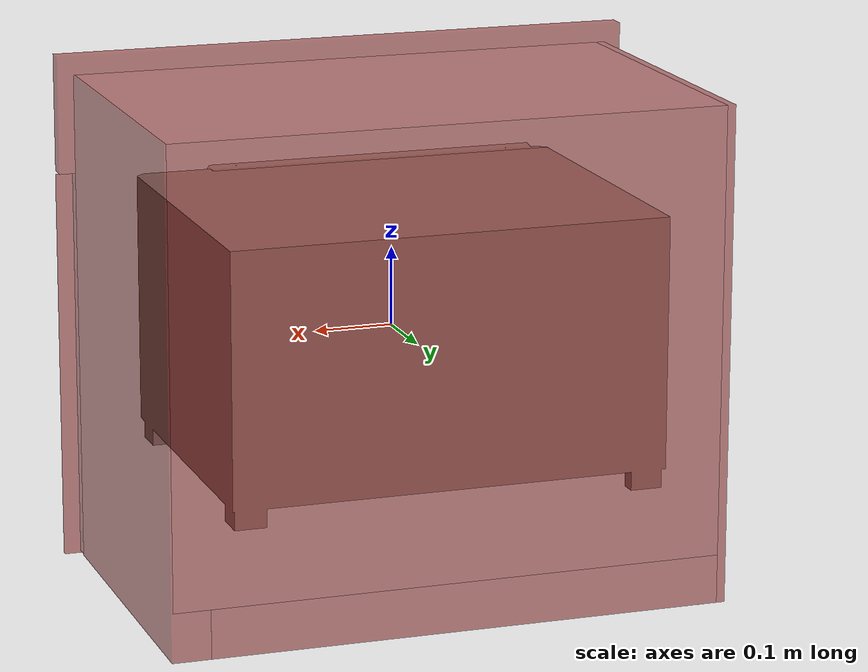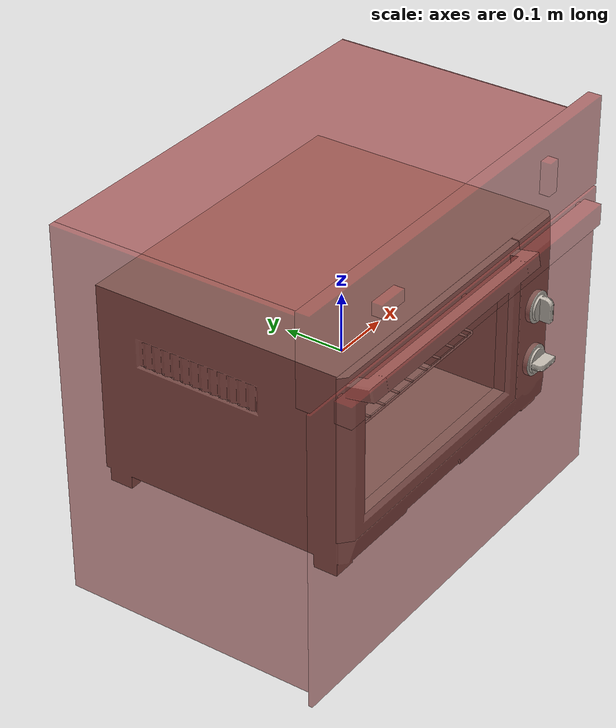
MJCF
<mujoco model="model">
  <compiler angle="radian"/>
  <asset>
    <mesh file="visuals/Body001.obj" name="Body001_vis"/>
    <mesh file="visuals/Door001.obj" name="Door001_vis"/>
    <mesh file="visuals/Door001_Clear.obj" name="Door001_Clear_vis"/>
    <mesh file="visuals/Knob001.obj" name="Knob001_vis"/>
    <mesh file="visuals/Knob002.obj" name="Knob002_vis"/>
    <mesh file="visuals/Shelf001.obj" name="Shelf001_vis"/>
    <texture file="visuals/T_BC001.png" name="Body001_material" type="2d"/>
    <material name="Body001_material" rgba="1 1 1 1.0" texture="Body001_material" shininess="0.5" specular="0.8"/>
    <texture file="visuals/T_BC001.png" name="Door001_material" type="2d"/>
    <material name="Door001_material" rgba="1 1 1 1.0" texture="Door001_material" shininess="0.5" specular="0.8"/>
    <texture file="visuals/T_BC001.png" name="Door001_Clear_material" type="2d"/>
    <material name="Door001_Clear_material" rgba="1 1 1 0.699999988079071" texture="Door001_Clear_material" shininess="0.5" specular="0.8"/>
    <texture file="visuals/T_BC001.png" name="Knob001_material" type="2d"/>
    <material name="Knob001_material" rgba="1 1 1 1.0" texture="Knob001_material" shininess="0.5" specular="0.8"/>
    <texture file="visuals/T_BC001.png" name="Knob002_material" type="2d"/>
    <material name="Knob002_material" rgba="1 1 1 1.0" texture="Knob002_material" shininess="0.5" specular="0.8"/>
    <texture file="visuals/T_BC001.png" name="Shelf001_material" type="2d"/>
    <material name="Shelf001_material" rgba="1 1 1 1.0" texture="Shelf001_material" shininess="0.5" specular="0.8"/>
  </asset>
  <default>
    <default class="visual">
      <geom conaffinity="0" contype="0" group="1" type="mesh"/>
    </default>
    <default class="collision">
      <geom group="0" rgba="0.5 0 0 0.5"/>
    </default>
    <default class="spawn">
      <geom group="0" rgba="1 1 1 0.5" contype="0" conaffinity="0"/>
      <site group="0" rgba="1 1 1 0.5"/>
    </default>
    <default class="region">
      <geom group="1" conaffinity="0" contype="0" rgba="0 1 0 0"/>
    </default>
  </default>
  <worldbody>
    <body>
      <body name="object">
        <geom mesh="Body001_vis" type="mesh" solimp="0.998 0.998 0.001" solref="0.001 1" density="100" friction="0.95 0.3 0.1" class="visual" material="Body001_material"/>
        <geom class="collision" type="box" pos="-0.335058 0.029017 -0.009503" size="0.019283024594187737 0.2154095321893692 0.31473666429519653" quat="1.0 0.0 0.0 0.0"/>
        <geom class="collision" type="box" pos="0.331960 0.029017 -0.009503" size="0.024300919845700264 0.21540962159633636 0.31473681330680847" quat="1.0 0.0 0.0 0.0"/>
        <geom class="collision" type="box" pos="0.005343 0.029017 -0.290219" size="0.34893864393234253 0.21540966629981995 0.03400252386927605" quat="1.0 0.0 0.0 0.0"/>
        <geom class="collision" type="box" pos="0.005343 0.029017 0.233327" size="0.34893864393234253 0.2154097557067871 0.07190880179405212" quat="1.0 0.0 0.0 0.0"/>
        <geom class="collision" type="box" pos="-0.000113 -0.197748 0.254387" size="0.3764316141605377 0.011466951109468937 0.07465071976184845" quat="1.0 0.0 0.0 0.0"/>
        <geom class="collision" type="box" pos="-0.318379 0.029017 -0.035377" size="0.010815974324941635 0.19568957388401031 0.0053917039185762405" quat="1.0 0.0 0.0 0.0"/>
        <geom class="collision" type="box" pos="0.308683 0.029017 -0.035377" size="0.010815974324941635 0.19568964838981628 0.005391706246882677" quat="1.0 0.0 0.0 0.0"/>
        <geom class="collision" type="box" pos="0.005343 0.229452 0.021599" size="0.34893864393234253 0.014975848607718945 0.2836359739303589" quat="1.0 0.0 0.0 0.0"/>
        <body name="Door001">
          <joint axis="1.0 0.0 0.0" pos="0.001412 -0.200337 -0.313802" limited="true" name="Door001_joint" range="0.0 1.15" type="hinge" damping="5" frictionloss="1" armature=".01" stiffness="0.05" springref="-1"/>
          <geom mesh="Door001_vis" type="mesh" solimp="0.998 0.998 0.001" solref="0.001 1" density="100" friction="0.95 0.3 0.1" class="visual" material="Door001_material"/>
          <geom class="collision" type="box" pos="0.001570 -0.195238 -0.073401" size="0.35471203923225403 0.007204085122793913 0.24928270280361176" quat="1.0 0.0 0.0 0.0"/>
          <geom class="collision" type="box" pos="0.000021 -0.206499 -0.075318" size="0.37640616297721863 0.0034194285981357098 0.25061851739883423" quat="1.0 0.0 0.0 0.0"/>
          <geom class="collision" type="box" pos="0.000456 -0.229898 0.158431" size="0.33105504512786865 0.014362016692757607 0.01757289282977581" quat="1.0 0.0 0.0 0.0"/>
          <geom class="collision" type="box" pos="-0.309703 -0.212593 0.158431" size="0.005096600390970707 0.003125251503661275 0.01407035905867815" quat="1.0 0.0 0.0 0.0"/>
          <geom class="collision" type="box" pos="-0.001351 -0.212593 0.158431" size="0.005096600390970707 0.003125251503661275 0.01407035905867815" quat="1.0 0.0 0.0 0.0"/>
          <geom class="collision" type="box" pos="0.319471 -0.212593 0.158431" size="0.005096600390970707 0.003125251503661275 0.01407035905867815" quat="1.0 0.0 0.0 0.0"/>
          <body name="Door001_Clear">
            <geom mesh="Door001_Clear_vis" type="mesh" solimp="0.998 0.998 0.001" solref="0.001 1" density="100" friction="0.95 0.3 0.1" class="visual" material="Door001_Clear_material"/>
          </body>
        </body>
        <body name="Knob001">
          <joint axis="0.0 1.0 0.0" pos="-0.210095 -0.215062 0.270606" limited="true" name="Knob001_joint" range="0.0 5.235987755982989" type="hinge" damping="0.05" armature="0.001"/>
          <geom mesh="Knob001_vis" type="mesh" solimp="0.998 0.998 0.001" solref="0.001 1" density="100" friction="0.95 0.3 0.1" class="visual" material="Knob001_material"/>
          <geom class="collision" type="box" pos="-0.210090 -0.219502 0.270780" size="0.02675819955766201 0.008497260510921478 0.010200317949056625" quat="1.0 0.0 0.0 0.0"/>
        </body>
        <body name="Knob002">
          <joint axis="0.0 1.0 0.0" pos="0.209498 -0.215062 0.270606" limited="true" name="Knob002_joint" range="0.0 5.672320068981571" type="hinge" damping="0.05" armature="0.001"/>
          <geom mesh="Knob002_vis" type="mesh" solimp="0.998 0.998 0.001" solref="0.001 1" density="100" friction="0.95 0.3 0.1" class="visual" material="Knob002_material"/>
          <geom class="collision" type="box" pos="0.209765 -0.219502 0.270780" size="0.010200371034443378 0.008497260510921478 0.02675810642540455" quat="1.0 0.0 0.0 0.0"/>
        </body>
        <body name="Shelf001">
          <joint axis="0.0 -1.0 0.0" pos="-0.004294 0.006758 -0.026930" limited="true" name="Shelf001_joint" range="0.0 0.3" type="slide" damping="1" frictionloss="1" armature=".01" stiffness="0.05"/>
          <geom mesh="Shelf001_vis" type="mesh" solimp="0.998 0.998 0.001" solref="0.001 1" density="100" friction="0.95 0.3 0.1" class="visual" material="Shelf001_material"/>
          <geom class="collision" type="box" pos="-0.004444 0.006820 -0.026752" size="0.31109490990638733 0.1721295863389969 0.002636855700984597" quat="1.0 0.0 0.0 0.0"/>
        </body>
        <geom class="region" name="reg_main" type="box" pos="3.500000000017378e-06 0.016533499999999993 0.0" size="0.3765935 0.2274605 0.32876"/>
        <geom class="region" name="reg_int" type="box" pos="-0.00407550000000001 0.013916999999999999 -0.051723000000000005" size="0.3064345 0.194502 0.205401"/>
      </body>
    </body>
  </worldbody>
  <actuator>
    <motor name="Door001_joint_actuator" joint="Door001_joint" gear="50"/>
    <motor name="Knob001_joint_actuator" joint="Knob001_joint" gear="50"/>
    <motor name="Knob002_joint_actuator" joint="Knob002_joint" gear="50"/>
    <motor name="Shelf001_joint_actuator" joint="Shelf001_joint" gear="50"/>
  </actuator>
</mujoco>
